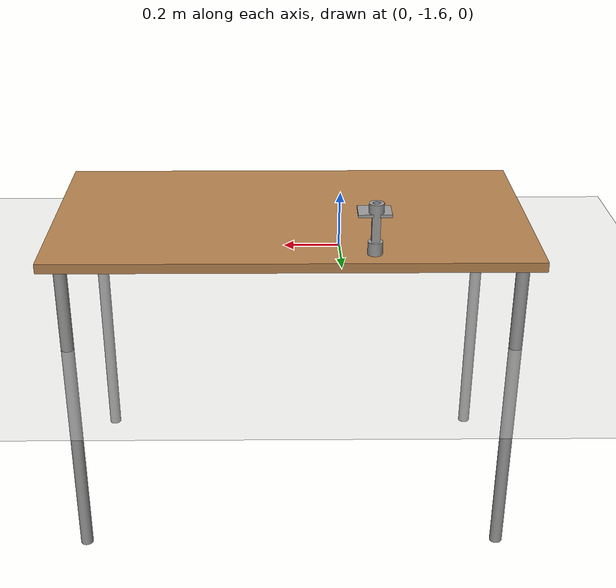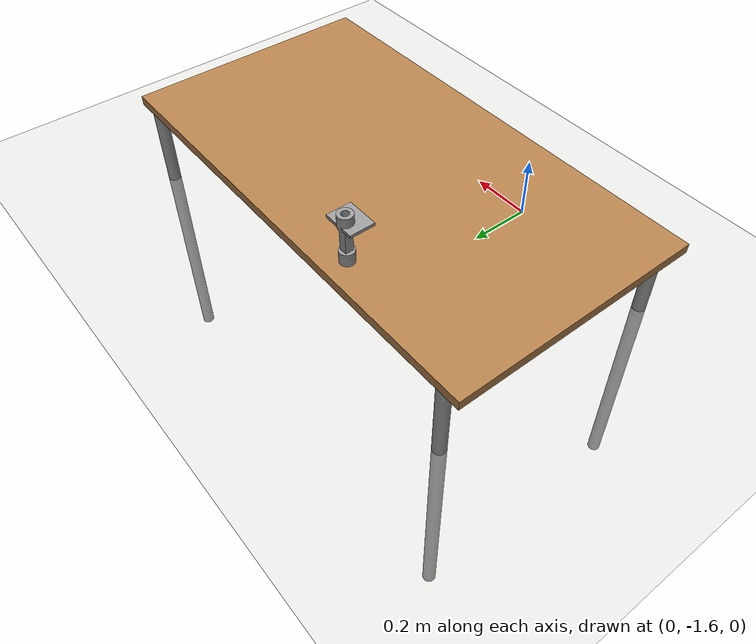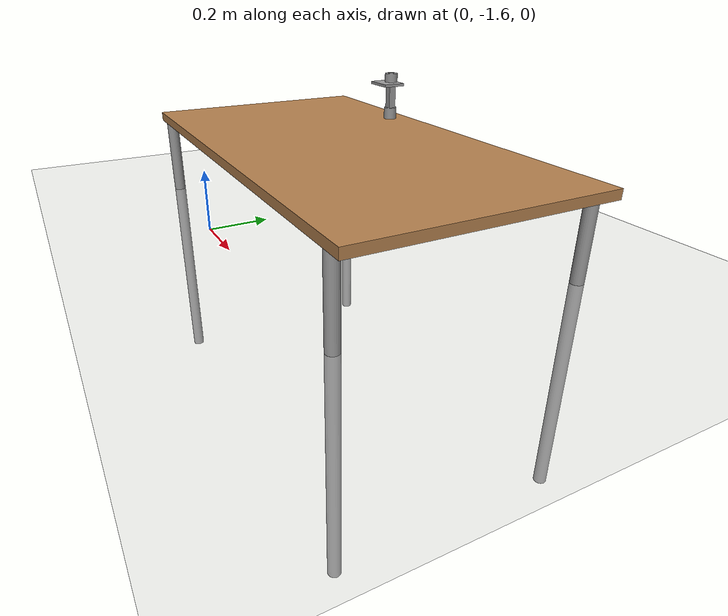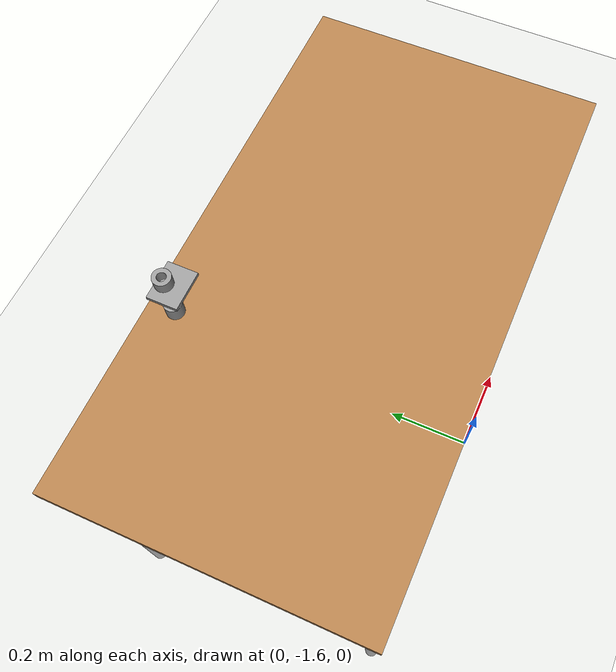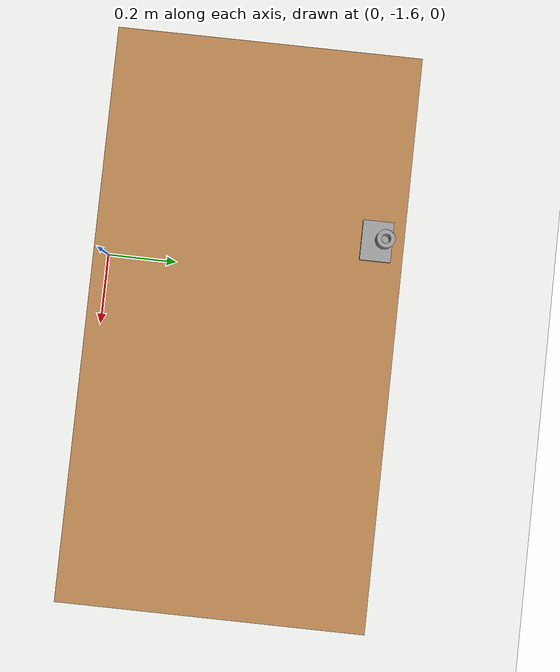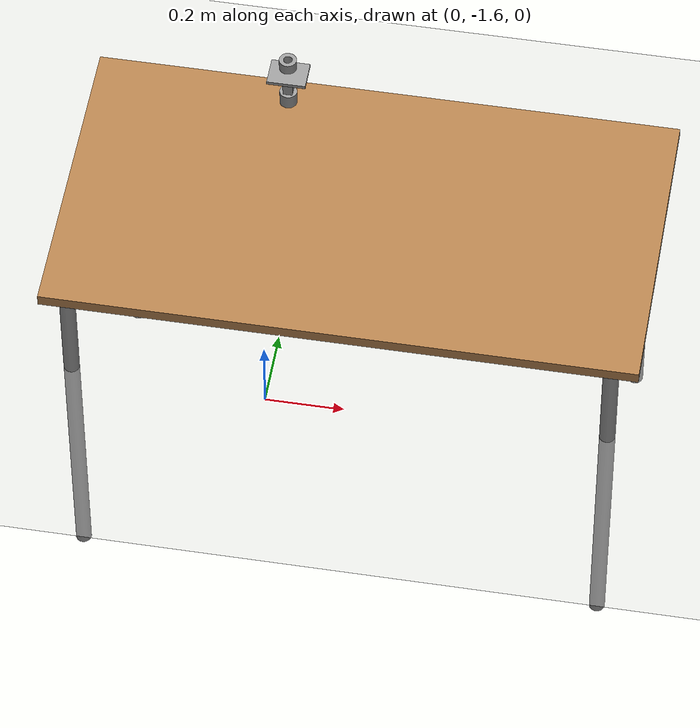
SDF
<sdf version="1.6">
 <world name="default">
  <light name="sun" type="directional">
   <pose>0 0 10 0 -0 0</pose>
   <diffuse>0.8 0.8 0.8 1</diffuse>
   <specular>0.2 0.2 0.2 1</specular>
   <attenuation>
    <range>1000</range>
    <constant>0.9</constant>
    <linear>0.01</linear>
    <quadratic>0.001</quadratic>
   </attenuation>
   <direction>-0.5 0.1 -0.9</direction>
  </light>
  <model name="ground_plane">
   <static>1</static>
   <link name="link">
    <collision name="collision">
     <geometry><plane><normal>0 0 1</normal><size>100 100</size></plane></geometry>
     <surface><friction><ode><mu>100</mu><mu2>50</mu2></ode></friction></surface>
    </collision>
    <visual name="visual">
     <cast_shadows>0</cast_shadows>
     <geometry><plane><normal>0 0 1</normal><size>100 100</size></plane></geometry>
     <material>
      <script><uri>file://media/materials/scripts/gazebo.material</uri><name>Gazebo/Grey</name></script>
     </material>
    </visual>
   </link>
  </model>
  <gravity>0 0 -9.8</gravity>
  <magnetic_field>6e-06 2.3e-05 -4.2e-05</magnetic_field>
  <atmosphere type="adiabatic"/>
  <physics name="default_physics" default="0" type="ode">
   <max_step_size>0.001</max_step_size>
   <real_time_factor>1</real_time_factor>
   <real_time_update_rate>1000</real_time_update_rate>
  </physics>
  <scene><ambient>0.4 0.4 0.4 1</ambient><background>0.7 0.7 0.7 1</background><shadows>1</shadows></scene>
  <spherical_coordinates>
   <surface_model>EARTH_WGS84</surface_model>
   <latitude_deg>0</latitude_deg>
   <longitude_deg>0</longitude_deg>
   <elevation>0</elevation>
   <heading_deg>0</heading_deg>
  </spherical_coordinates>
  <model name="wood.world">
   <model name="table">
    <static>1</static>
    <link name="link">
     <collision name="surface">
      <pose>0 0 1 0 -0 0</pose>
      <geometry><box><size>1.5 0.8 0.03</size></box></geometry>
      <surface><friction><ode><mu>0.6</mu><mu2>0.6</mu2></ode></friction></surface>
     </collision>
     <visual name="visual1">
      <pose>0 0 1 0 -0 0</pose>
      <geometry><box><size>1.5 0.8 0.03</size></box></geometry>
      <material>
       <script><uri>file://media/materials/scripts/gazebo.material</uri><name>Gazebo/Wood</name></script>
      </material>
     </visual>
     <collision name="front_left_leg">
      <pose>0.68 0.38 0.5 0 -0 0</pose>
      <geometry><cylinder><radius>0.02</radius><length>1</length></cylinder></geometry>
     </collision>
     <visual name="front_left_leg">
      <pose>0.68 0.38 0.5 0 -0 0</pose>
      <geometry><cylinder><radius>0.02</radius><length>1</length></cylinder></geometry>
      <material>
       <script><uri>file://media/materials/scripts/gazebo.material</uri><name>Gazebo/Grey</name></script>
      </material>
     </visual>
     <collision name="front_right_leg">
      <pose>0.68 -0.38 0.5 0 -0 0</pose>
      <geometry><cylinder><radius>0.02</radius><length>1</length></cylinder></geometry>
     </collision>
     <visual name="front_right_leg">
      <pose>0.68 -0.38 0.5 0 -0 0</pose>
      <geometry><cylinder><radius>0.02</radius><length>1</length></cylinder></geometry>
      <material>
       <script><uri>file://media/materials/scripts/gazebo.material</uri><name>Gazebo/Grey</name></script>
      </material>
     </visual>
     <collision name="back_right_leg">
      <pose>-0.68 -0.38 0.5 0 -0 0</pose>
      <geometry><cylinder><radius>0.02</radius><length>1</length></cylinder></geometry>
     </collision>
     <visual name="back_right_leg">
      <pose>-0.68 -0.38 0.5 0 -0 0</pose>
      <geometry><cylinder><radius>0.02</radius><length>1</length></cylinder></geometry>
      <material>
       <script><uri>file://media/materials/scripts/gazebo.material</uri><name>Gazebo/Grey</name></script>
      </material>
     </visual>
     <collision name="back_left_leg">
      <pose>-0.68 0.38 0.5 0 -0 0</pose>
      <geometry><cylinder><radius>0.02</radius><length>1</length></cylinder></geometry>
     </collision>
     <visual name="back_left_leg">
      <pose>-0.68 0.38 0.5 0 -0 0</pose>
      <geometry><cylinder><radius>0.02</radius><length>1</length></cylinder></geometry>
      <material>
       <script><uri>file://media/materials/scripts/gazebo.material</uri><name>Gazebo/Grey</name></script>
      </material>
     </visual>
    </link>
    <pose>-0 5e-06 0 0 -0 0</pose>
   </model>
   <static>0</static>
   <pose>0.179951 -1.19406 -0.728069 0 -0 0</pose>
  </model>
  <model name="wood.world_2">
   <link name="link_0">
    <inertial>
     <mass>1</mass>
     <inertia>
      <ixx>0.166667</ixx>
      <ixy>0</ixy>
      <ixz>0</ixz>
      <iyy>0.166667</iyy>
      <iyz>0</iyz>
      <izz>0.166667</izz>
     </inertia>
    </inertial>
    <pose>0 0 0 1.5708 -0 0</pose>
    <visual name="visual">
     <geometry>
      <mesh><uri>/home/zs/catkin_ws/src/shuang/meshes/tong.STL</uri><scale>0.5 1 0.5</scale></mesh>
     </geometry>
     <material>
      <lighting>1</lighting>
      <script><uri>file://media/materials/scripts/gazebo.material</uri><name>Gazebo/Grey</name></script>
      <emissive>0 0 0 1</emissive>
     </material>
    </visual>
    <collision name="collision">
     <geometry>
      <mesh><uri>/home/zs/catkin_ws/src/shuang/meshes/tong.STL</uri><scale>0.5 1 0.5</scale></mesh>
     </geometry>
     <surface>
      <friction>
       <ode><mu>1</mu><mu2>1</mu2><fdir1>0 0 0</fdir1><slip1>0</slip1><slip2>0</slip2></ode>
       <torsional>
        <coefficient>1</coefficient>
        <patch_radius>0</patch_radius>
        <surface_radius>0</surface_radius>
        <use_patch_radius>1</use_patch_radius>
        <ode><slip>0</slip></ode>
       </torsional>
      </friction>
      <bounce><restitution_coefficient>0</restitution_coefficient><threshold>1e+06</threshold></bounce>
      <contact>
       <collide_without_contact>0</collide_without_contact>
       <collide_without_contact_bitmask>1</collide_without_contact_bitmask>
       <collide_bitmask>1</collide_bitmask>
       <ode>
        <soft_cfm>0</soft_cfm>
        <soft_erp>0.2</soft_erp>
        <kp>1e+13</kp>
        <kd>1</kd>
        <max_vel>0.01</max_vel>
        <min_depth>0</min_depth>
       </ode>
       <bullet>
        <split_impulse>1</split_impulse>
        <split_impulse_penetration_threshold>-0.01</split_impulse_penetration_threshold>
        <soft_cfm>0</soft_cfm>
        <soft_erp>0.2</soft_erp>
        <kp>1e+13</kp>
        <kd>1</kd>
       </bullet>
      </contact>
     </surface>
    </collision>
   </link>
   <link name="link_1">
    <inertial>
     <mass>0.5</mass>
     <inertia>
      <ixx>3.36474e-08</ixx>
      <ixy>0</ixy>
      <ixz>0</ixz>
      <iyy>5.7042e-08</iyy>
      <iyz>0</iyz>
      <izz>8.97184e-08</izz>
     </inertia>
    </inertial>
    <pose>0.004131 -0.017752 0.125924 6e-06 3e-06 0</pose>
    <visual name="visual">
     <geometry><box><size>0.099078 0.075867 0.00918</size></box></geometry>
     <material>
      <lighting>1</lighting>
      <script><uri>file://media/materials/scripts/gazebo.material</uri><name>Gazebo/Grey</name></script>
      <emissive>0 0 0 1</emissive>
     </material>
    </visual>
    <collision name="collision">
     <geometry><box><size>0.099078 0.075867 0.00918</size></box></geometry>
     <surface>
      <friction>
       <ode><mu>1</mu><mu2>1</mu2><fdir1>0 0 0</fdir1><slip1>0</slip1><slip2>0</slip2></ode>
       <torsional>
        <coefficient>1</coefficient>
        <patch_radius>0</patch_radius>
        <surface_radius>0</surface_radius>
        <use_patch_radius>1</use_patch_radius>
        <ode><slip>0</slip></ode>
       </torsional>
      </friction>
      <bounce><restitution_coefficient>0</restitution_coefficient><threshold>1e+06</threshold></bounce>
      <contact>
       <collide_without_contact>0</collide_without_contact>
       <collide_without_contact_bitmask>1</collide_without_contact_bitmask>
       <collide_bitmask>1</collide_bitmask>
       <ode>
        <soft_cfm>0</soft_cfm>
        <soft_erp>0.2</soft_erp>
        <kp>1e+13</kp>
        <kd>1</kd>
        <max_vel>0.01</max_vel>
        <min_depth>0</min_depth>
       </ode>
       <bullet>
        <split_impulse>1</split_impulse>
        <split_impulse_penetration_threshold>-0.01</split_impulse_penetration_threshold>
        <soft_cfm>0</soft_cfm>
        <soft_erp>0.2</soft_erp>
        <kp>1e+13</kp>
        <kd>1</kd>
       </bullet>
      </contact>
     </surface>
    </collision>
   </link>
   <joint name="link_0_JOINT_0" type="fixed">
    <parent>link_0</parent>
    <child>link_1</child>
    <physics>
     <ode><limit><cfm>0</cfm><erp>0.2</erp></limit><suspension><cfm>0</cfm><erp>0.2</erp></suspension></ode>
    </physics>
   </joint>
   <static>0</static>
   <pose>-0.066812 -0.864407 0.286921 -5e-06 -3e-06 -0</pose>
  </model>
 </world>
</sdf>
